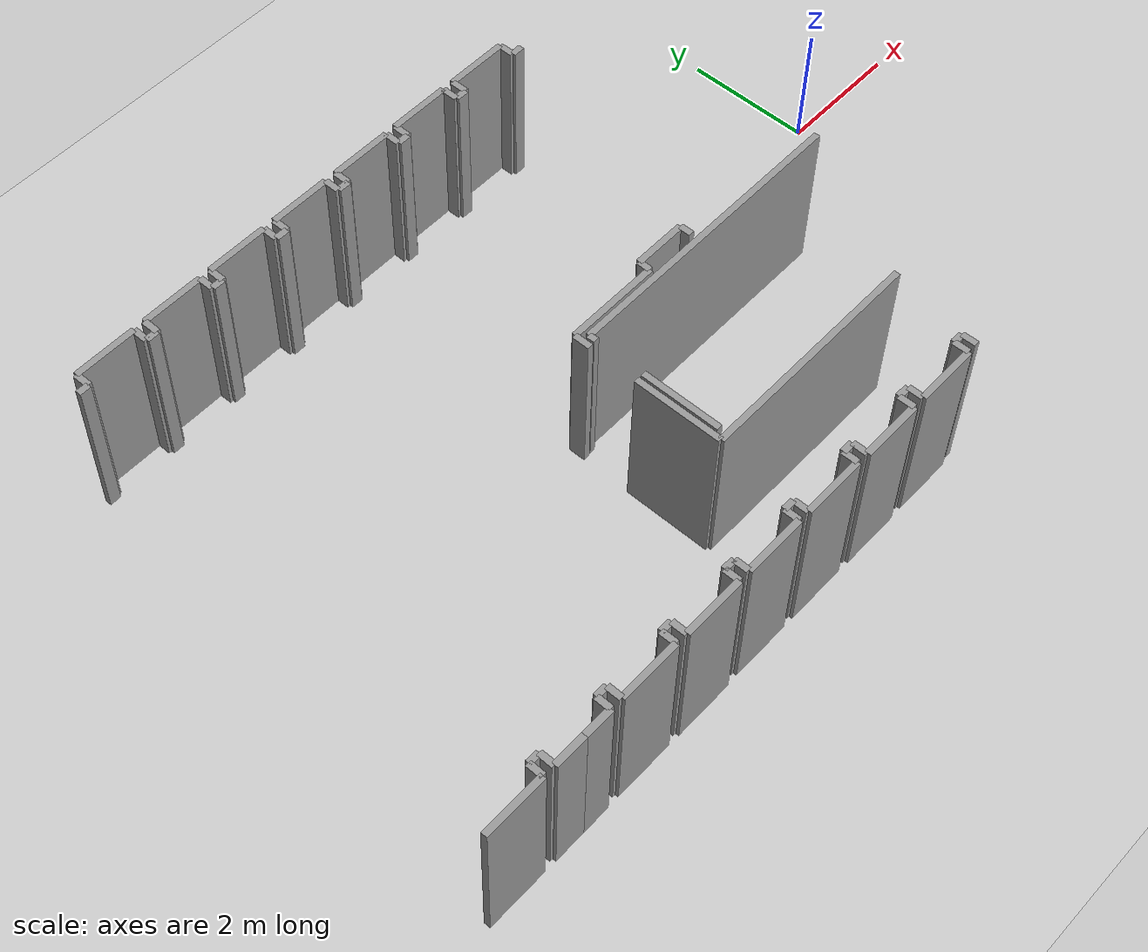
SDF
<sdf version="1.6">
 <world name="default">
  <model name="ground_plane">
   <static>1</static>
   <link name="link">
    <collision name="collision">
     <geometry><plane><normal>0 0 1</normal><size>100 100</size></plane></geometry>
     <surface><friction><ode><mu>100</mu><mu2>50</mu2></ode></friction></surface>
    </collision>
    <visual name="visual">
     <cast_shadows>0</cast_shadows>
     <geometry><plane><normal>0 0 1</normal><size>100 100</size></plane></geometry>
     <material>
      <script><uri>file://media/materials/scripts/gazebo.material</uri><name>Gazebo/Grey</name></script>
     </material>
    </visual>
   </link>
  </model>
  <model name="0510025536_Layout1_PLAN5">
   <static>1</static>
   <link name="Wall_6">
    <collision name="Wall_6_Collision">
     <geometry><box><size>4.75626183426 0.1 2.5</size></box></geometry>
     <pose>2.37813091713 0 1.25 0 0 0</pose>
    </collision>
    <visual name="Wall_6_Visual">
     <pose>2.37813091713 0 1.25 0 0 0</pose>
     <geometry><box><size>4.75626183426 0.1 2.5</size></box></geometry>
     <material>
      <script><uri>file://media/materials/scripts/gazebo.material</uri><name>Gazebo/Grey</name></script>
      <ambient>1 1 1 1</ambient>
     </material>
    </visual>
    <pose>13.7443417926 -4.4078230039 0 0 0 0.0</pose>
   </link>
   <link name="Wall_10">
    <collision name="Wall_10_Collision">
     <geometry><box><size>1.26138948546 0.1 2.5</size></box></geometry>
     <pose>0.630694742728 0 1.25 0 0 0</pose>
    </collision>
    <visual name="Wall_10_Visual">
     <pose>0.630694742728 0 1.25 0 0 0</pose>
     <geometry><box><size>1.26138948546 0.1 2.5</size></box></geometry>
     <material>
      <script><uri>file://media/materials/scripts/gazebo.material</uri><name>Gazebo/Grey</name></script>
      <ambient>1 1 1 1</ambient>
     </material>
    </visual>
    <pose>13.7527290287 -6.58030778615 0 0 0 1.57079632679</pose>
   </link>
   <link name="Wall_11">
    <collision name="Wall_11_Collision">
     <geometry><box><size>0.122347523683 0.1 2.5</size></box></geometry>
     <pose>0.0611737618414 0 1.25 0 0 0</pose>
    </collision>
    <visual name="Wall_11_Visual">
     <pose>0.0611737618414 0 1.25 0 0 0</pose>
     <geometry><box><size>0.122347523683 0.1 2.5</size></box></geometry>
     <material>
      <script><uri>file://media/materials/scripts/gazebo.material</uri><name>Gazebo/Grey</name></script>
      <ambient>1 1 1 1</ambient>
     </material>
    </visual>
    <pose>13.7527290287 -4.52988270577 0 0 0 1.63940269551</pose>
   </link>
   <link name="Wall_12">
    <collision name="Wall_12_Collision">
     <geometry><box><size>0.512638039928 0.1 2.5</size></box></geometry>
     <pose>0.256319019964 0 1.25 0 0 0</pose>
    </collision>
    <visual name="Wall_12_Visual">
     <pose>0.256319019964 0 1.25 0 0 0</pose>
     <geometry><box><size>0.512638039928 0.1 2.5</size></box></geometry>
     <material>
      <script><uri>file://media/materials/scripts/gazebo.material</uri><name>Gazebo/Grey</name></script>
      <ambient>1 1 1 1</ambient>
     </material>
    </visual>
    <pose>9.40146903712 -8.18080847873 0 0 0 3.14159265359</pose>
   </link>
   <link name="Wall_13">
    <collision name="Wall_13_Collision">
     <geometry><box><size>0.235922786596 0.1 2.5</size></box></geometry>
     <pose>0.117961393298 0 1.25 0 0 0</pose>
    </collision>
    <visual name="Wall_13_Visual">
     <pose>0.117961393298 0 1.25 0 0 0</pose>
     <geometry><box><size>0.235922786596 0.1 2.5</size></box></geometry>
     <material>
      <script><uri>file://media/materials/scripts/gazebo.material</uri><name>Gazebo/Grey</name></script>
      <ambient>1 1 1 1</ambient>
     </material>
    </visual>
    <pose>8.88883099719 -8.18080847873 0 0 0 1.57079632679</pose>
   </link>
   <link name="Wall_14">
    <collision name="Wall_14_Collision">
     <geometry><box><size>0.182930703638 0.1 2.5</size></box></geometry>
     <pose>0.0914653518191 0 1.25 0 0 0</pose>
    </collision>
    <visual name="Wall_14_Visual">
     <pose>0.0914653518191 0 1.25 0 0 0</pose>
     <geometry><box><size>0.182930703638 0.1 2.5</size></box></geometry>
     <material>
      <script><uri>file://media/materials/scripts/gazebo.material</uri><name>Gazebo/Grey</name></script>
      <ambient>1 1 1 1</ambient>
     </material>
    </visual>
    <pose>8.88883099719 -7.94488569214 0 0 0 3.14159265359</pose>
   </link>
   <link name="Wall_15">
    <collision name="Wall_15_Collision">
     <geometry><box><size>0.229187581807 0.1 2.5</size></box></geometry>
     <pose>0.114593790904 0 1.25 0 0 0</pose>
    </collision>
    <visual name="Wall_15_Visual">
     <pose>0.114593790904 0 1.25 0 0 0</pose>
     <geometry><box><size>0.229187581807 0.1 2.5</size></box></geometry>
     <material>
      <script><uri>file://media/materials/scripts/gazebo.material</uri><name>Gazebo/Grey</name></script>
      <ambient>1 1 1 1</ambient>
     </material>
    </visual>
    <pose>8.70590029355 -7.94488569214 0 0 0 -1.57079632679</pose>
   </link>
   <link name="Wall_16">
    <collision name="Wall_16_Collision">
     <geometry><box><size>0.9815607884 0.1 2.5</size></box></geometry>
     <pose>0.4907803942 0 1.25 0 0 0</pose>
    </collision>
    <visual name="Wall_16_Visual">
     <pose>0.4907803942 0 1.25 0 0 0</pose>
     <geometry><box><size>0.9815607884 0.1 2.5</size></box></geometry>
     <material>
      <script><uri>file://media/materials/scripts/gazebo.material</uri><name>Gazebo/Grey</name></script>
      <ambient>1 1 1 1</ambient>
     </material>
    </visual>
    <pose>8.70590029355 -8.17407327394 0 0 0 3.14159265359</pose>
   </link>
   <link name="Wall_81">
    <collision name="Wall_81_Collision">
     <geometry><box><size>0.17880062523 0.1 2.5</size></box></geometry>
     <pose>0.0894003126152 0 1.25 0 0 0</pose>
    </collision>
    <visual name="Wall_81_Visual">
     <pose>0.0894003126152 0 1.25 0 0 0</pose>
     <geometry><box><size>0.17880062523 0.1 2.5</size></box></geometry>
     <material>
      <script><uri>file://media/materials/scripts/gazebo.material</uri><name>Gazebo/Grey</name></script>
      <ambient>1 1 1 1</ambient>
     </material>
    </visual>
    <pose>8.70202437382 -0.252843400135 0 0 0 0.0</pose>
   </link>
   <link name="Wall_82">
    <collision name="Wall_82_Collision">
     <geometry><box><size>0.242028948673 0.1 2.5</size></box></geometry>
     <pose>0.121014474336 0 1.25 0 0 0</pose>
    </collision>
    <visual name="Wall_82_Visual">
     <pose>0.121014474336 0 1.25 0 0 0</pose>
     <geometry><box><size>0.242028948673 0.1 2.5</size></box></geometry>
     <material>
      <script><uri>file://media/materials/scripts/gazebo.material</uri><name>Gazebo/Grey</name></script>
      <ambient>1 1 1 1</ambient>
     </material>
    </visual>
    <pose>8.88082499905 -0.252843400135 0 0 0 1.57079632679</pose>
   </link>
   <link name="Wall_83">
    <collision name="Wall_83_Collision">
     <geometry><box><size>0.97895566202 0.1 2.5</size></box></geometry>
     <pose>0.48947783101 0 1.25 0 0 0</pose>
    </collision>
    <visual name="Wall_83_Visual">
     <pose>0.48947783101 0 1.25 0 0 0</pose>
     <geometry><box><size>0.97895566202 0.1 2.5</size></box></geometry>
     <material>
      <script><uri>file://media/materials/scripts/gazebo.material</uri><name>Gazebo/Grey</name></script>
      <ambient>1 1 1 1</ambient>
     </material>
    </visual>
    <pose>8.88082499905 -0.010814451462 0 0 0 0.0</pose>
   </link>
   <link name="Wall_84">
    <collision name="Wall_84_Collision">
     <geometry><box><size>0.241221994891 0.1 2.5</size></box></geometry>
     <pose>0.120610997446 0 1.25 0 0 0</pose>
    </collision>
    <visual name="Wall_84_Visual">
     <pose>0.120610997446 0 1.25 0 0 0</pose>
     <geometry><box><size>0.241221994891 0.1 2.5</size></box></geometry>
     <material>
      <script><uri>file://media/materials/scripts/gazebo.material</uri><name>Gazebo/Grey</name></script>
      <ambient>1 1 1 1</ambient>
     </material>
    </visual>
    <pose>9.85978066107 -0.010814451462 0 0 0 -1.57079632679</pose>
   </link>
   <link name="Wall_85">
    <collision name="Wall_85_Collision">
     <geometry><box><size>0.183693179652 0.1 2.5</size></box></geometry>
     <pose>0.091846589826 0 1.25 0 0 0</pose>
    </collision>
    <visual name="Wall_85_Visual">
     <pose>0.091846589826 0 1.25 0 0 0</pose>
     <geometry><box><size>0.183693179652 0.1 2.5</size></box></geometry>
     <material>
      <script><uri>file://media/materials/scripts/gazebo.material</uri><name>Gazebo/Grey</name></script>
      <ambient>1 1 1 1</ambient>
     </material>
    </visual>
    <pose>9.85978066107 -0.252036446353 0 0 0 0.0</pose>
   </link>
   <link name="Wall_86">
    <collision name="Wall_86_Collision">
     <geometry><box><size>0.245104268595 0.1 2.5</size></box></geometry>
     <pose>0.122552134297 0 1.25 0 0 0</pose>
    </collision>
    <visual name="Wall_86_Visual">
     <pose>0.122552134297 0 1.25 0 0 0</pose>
     <geometry><box><size>0.245104268595 0.1 2.5</size></box></geometry>
     <material>
      <script><uri>file://media/materials/scripts/gazebo.material</uri><name>Gazebo/Grey</name></script>
      <ambient>1 1 1 1</ambient>
     </material>
    </visual>
    <pose>10.0434738407 -0.252036446353 0 0 0 1.57079632679</pose>
   </link>
   <link name="Wall_87">
    <collision name="Wall_87_Collision">
     <geometry><box><size>0.976414075307 0.1 2.5</size></box></geometry>
     <pose>0.488207037654 0 1.25 0 0 0</pose>
    </collision>
    <visual name="Wall_87_Visual">
     <pose>0.488207037654 0 1.25 0 0 0</pose>
     <geometry><box><size>0.976414075307 0.1 2.5</size></box></geometry>
     <material>
      <script><uri>file://media/materials/scripts/gazebo.material</uri><name>Gazebo/Grey</name></script>
      <ambient>1 1 1 1</ambient>
     </material>
    </visual>
    <pose>10.0434738407 -0.00693217775857 0 0 0 0.0</pose>
   </link>
   <link name="Wall_88">
    <collision name="Wall_88_Collision">
     <geometry><box><size>0.237536694158 0.1 2.5</size></box></geometry>
     <pose>0.118768347079 0 1.25 0 0 0</pose>
    </collision>
    <visual name="Wall_88_Visual">
     <pose>0.118768347079 0 1.25 0 0 0</pose>
     <geometry><box><size>0.237536694158 0.1 2.5</size></box></geometry>
     <material>
      <script><uri>file://media/materials/scripts/gazebo.material</uri><name>Gazebo/Grey</name></script>
      <ambient>1 1 1 1</ambient>
     </material>
    </visual>
    <pose>11.019887916 -0.00693217775857 0 0 0 -1.57079632679</pose>
   </link>
   <link name="Wall_89">
    <collision name="Wall_89_Collision">
     <geometry><box><size>0.181659910282 0.1 2.5</size></box></geometry>
     <pose>0.090829955141 0 1.25 0 0 0</pose>
    </collision>
    <visual name="Wall_89_Visual">
     <pose>0.090829955141 0 1.25 0 0 0</pose>
     <geometry><box><size>0.181659910282 0.1 2.5</size></box></geometry>
     <material>
      <script><uri>file://media/materials/scripts/gazebo.material</uri><name>Gazebo/Grey</name></script>
      <ambient>1 1 1 1</ambient>
     </material>
    </visual>
    <pose>11.019887916 -0.244468871917 0 0 0 0.0</pose>
   </link>
   <link name="Wall_90">
    <collision name="Wall_90_Collision">
     <geometry><box><size>0.243102769059 0.1 2.5</size></box></geometry>
     <pose>0.121551384529 0 1.25 0 0 0</pose>
    </collision>
    <visual name="Wall_90_Visual">
     <pose>0.121551384529 0 1.25 0 0 0</pose>
     <geometry><box><size>0.243102769059 0.1 2.5</size></box></geometry>
     <material>
      <script><uri>file://media/materials/scripts/gazebo.material</uri><name>Gazebo/Grey</name></script>
      <ambient>1 1 1 1</ambient>
     </material>
    </visual>
    <pose>11.2015478263 -0.244468871917 0 0 0 1.57079632679</pose>
   </link>
   <link name="Wall_91">
    <collision name="Wall_91_Collision">
     <geometry><box><size>0.972411076235 0.1 2.5</size></box></geometry>
     <pose>0.486205538117 0 1.25 0 0 0</pose>
    </collision>
    <visual name="Wall_91_Visual">
     <pose>0.486205538117 0 1.25 0 0 0</pose>
     <geometry><box><size>0.972411076235 0.1 2.5</size></box></geometry>
     <material>
      <script><uri>file://media/materials/scripts/gazebo.material</uri><name>Gazebo/Grey</name></script>
      <ambient>1 1 1 1</ambient>
     </material>
    </visual>
    <pose>11.2015478263 -0.00136610285801 0 0 0 0.0</pose>
   </link>
   <link name="Wall_92">
    <collision name="Wall_92_Collision">
     <geometry><box><size>0.245834974775 0.1 2.5</size></box></geometry>
     <pose>0.122917487387 0 1.25 0 0 0</pose>
    </collision>
    <visual name="Wall_92_Visual">
     <pose>0.122917487387 0 1.25 0 0 0</pose>
     <geometry><box><size>0.245834974775 0.1 2.5</size></box></geometry>
     <material>
      <script><uri>file://media/materials/scripts/gazebo.material</uri><name>Gazebo/Grey</name></script>
      <ambient>1 1 1 1</ambient>
     </material>
    </visual>
    <pose>12.1739589025 -0.00136610285801 0 0 0 -1.57079632679</pose>
   </link>
   <link name="Wall_93">
    <collision name="Wall_93_Collision">
     <geometry><box><size>0.19392306617 0.1 2.5</size></box></geometry>
     <pose>0.0969615330851 0 1.25 0 0 0</pose>
    </collision>
    <visual name="Wall_93_Visual">
     <pose>0.0969615330851 0 1.25 0 0 0</pose>
     <geometry><box><size>0.19392306617 0.1 2.5</size></box></geometry>
     <material>
      <script><uri>file://media/materials/scripts/gazebo.material</uri><name>Gazebo/Grey</name></script>
      <ambient>1 1 1 1</ambient>
     </material>
    </visual>
    <pose>12.1739589025 -0.247201077633 0 0 0 0.0</pose>
   </link>
   <link name="Wall_94">
    <collision name="Wall_94_Collision">
     <geometry><box><size>0.241736666201 0.1 2.5</size></box></geometry>
     <pose>0.1208683331 0 1.25 0 0 0</pose>
    </collision>
    <visual name="Wall_94_Visual">
     <pose>0.1208683331 0 1.25 0 0 0</pose>
     <geometry><box><size>0.241736666201 0.1 2.5</size></box></geometry>
     <material>
      <script><uri>file://media/materials/scripts/gazebo.material</uri><name>Gazebo/Grey</name></script>
      <ambient>1 1 1 1</ambient>
     </material>
    </visual>
    <pose>12.3678819687 -0.247201077633 0 0 0 1.57079632679</pose>
   </link>
   <link name="Wall_95">
    <collision name="Wall_95_Collision">
     <geometry><box><size>0.962880126063 0.1 2.5</size></box></geometry>
     <pose>0.481440063031 0 1.25 0 0 0</pose>
    </collision>
    <visual name="Wall_95_Visual">
     <pose>0.481440063031 0 1.25 0 0 0</pose>
     <geometry><box><size>0.962880126063 0.1 2.5</size></box></geometry>
     <material>
      <script><uri>file://media/materials/scripts/gazebo.material</uri><name>Gazebo/Grey</name></script>
      <ambient>1 1 1 1</ambient>
     </material>
    </visual>
    <pose>12.3678819687 -0.00546441143206 0 0 0 0.0</pose>
   </link>
   <link name="Wall_96">
    <collision name="Wall_96_Collision">
     <geometry><box><size>0.243102769059 0.1 2.5</size></box></geometry>
     <pose>0.121551384529 0 1.25 0 0 0</pose>
    </collision>
    <visual name="Wall_96_Visual">
     <pose>0.121551384529 0 1.25 0 0 0</pose>
     <geometry><box><size>0.243102769059 0.1 2.5</size></box></geometry>
     <material>
      <script><uri>file://media/materials/scripts/gazebo.material</uri><name>Gazebo/Grey</name></script>
      <ambient>1 1 1 1</ambient>
     </material>
    </visual>
    <pose>13.3307620948 -0.00546441143206 0 0 0 -1.57079632679</pose>
   </link>
   <link name="Wall_97">
    <collision name="Wall_97_Collision">
     <geometry><box><size>0.189792987762 0.1 2.5</size></box></geometry>
     <pose>0.0948964938811 0 1.25 0 0 0</pose>
    </collision>
    <visual name="Wall_97_Visual">
     <pose>0.0948964938811 0 1.25 0 0 0</pose>
     <geometry><box><size>0.189792987762 0.1 2.5</size></box></geometry>
     <material>
      <script><uri>file://media/materials/scripts/gazebo.material</uri><name>Gazebo/Grey</name></script>
      <ambient>1 1 1 1</ambient>
     </material>
    </visual>
    <pose>13.3307620948 -0.248567180491 0 0 0 0.0</pose>
   </link>
   <link name="Wall_98">
    <collision name="Wall_98_Collision">
     <geometry><box><size>0.240370563343 0.1 2.5</size></box></geometry>
     <pose>0.120185281671 0 1.25 0 0 0</pose>
    </collision>
    <visual name="Wall_98_Visual">
     <pose>0.120185281671 0 1.25 0 0 0</pose>
     <geometry><box><size>0.240370563343 0.1 2.5</size></box></geometry>
     <material>
      <script><uri>file://media/materials/scripts/gazebo.material</uri><name>Gazebo/Grey</name></script>
      <ambient>1 1 1 1</ambient>
     </material>
    </visual>
    <pose>13.5205550825 -0.248567180491 0 0 0 1.57079632679</pose>
   </link>
   <link name="Wall_99">
    <collision name="Wall_99_Collision">
     <geometry><box><size>0.978320265342 0.1 2.5</size></box></geometry>
     <pose>0.489160132671 0 1.25 0 0 0</pose>
    </collision>
    <visual name="Wall_99_Visual">
     <pose>0.489160132671 0 1.25 0 0 0</pose>
     <geometry><box><size>0.978320265342 0.1 2.5</size></box></geometry>
     <material>
      <script><uri>file://media/materials/scripts/gazebo.material</uri><name>Gazebo/Grey</name></script>
      <ambient>1 1 1 1</ambient>
     </material>
    </visual>
    <pose>13.5205550825 -0.00819661714809 0 0 0 0.0</pose>
   </link>
   <link name="Wall_100">
    <collision name="Wall_100_Collision">
     <geometry><box><size>0.237638357627 0.1 2.5</size></box></geometry>
     <pose>0.118819178813 0 1.25 0 0 0</pose>
    </collision>
    <visual name="Wall_100_Visual">
     <pose>0.118819178813 0 1.25 0 0 0</pose>
     <geometry><box><size>0.237638357627 0.1 2.5</size></box></geometry>
     <material>
      <script><uri>file://media/materials/scripts/gazebo.material</uri><name>Gazebo/Grey</name></script>
      <ambient>1 1 1 1</ambient>
     </material>
    </visual>
    <pose>14.4988753479 -0.00819661714809 0 0 0 -1.57079632679</pose>
   </link>
   <link name="Wall_101">
    <collision name="Wall_101_Collision">
     <geometry><box><size>0.185281671347 0.1 2.5</size></box></geometry>
     <pose>0.0926408356737 0 1.25 0 0 0</pose>
    </collision>
    <visual name="Wall_101_Visual">
     <pose>0.0926408356737 0 1.25 0 0 0</pose>
     <geometry><box><size>0.185281671347 0.1 2.5</size></box></geometry>
     <material>
      <script><uri>file://media/materials/scripts/gazebo.material</uri><name>Gazebo/Grey</name></script>
      <ambient>1 1 1 1</ambient>
     </material>
    </visual>
    <pose>14.4988753479 -0.245834974775 0 0 0 0.0</pose>
   </link>
   <link name="Wall_102">
    <collision name="Wall_102_Collision">
     <geometry><box><size>0.245834974775 0.1 2.5</size></box></geometry>
     <pose>0.122917487387 0 1.25 0 0 0</pose>
    </collision>
    <visual name="Wall_102_Visual">
     <pose>0.122917487387 0 1.25 0 0 0</pose>
     <geometry><box><size>0.245834974775 0.1 2.5</size></box></geometry>
     <material>
      <script><uri>file://media/materials/scripts/gazebo.material</uri><name>Gazebo/Grey</name></script>
      <ambient>1 1 1 1</ambient>
     </material>
    </visual>
    <pose>14.6841570192 -0.245834974775 0 0 0 1.57079632679</pose>
   </link>
   <link name="Wall_103">
    <collision name="Wall_103_Collision">
     <geometry><box><size>0.965231093772 0.1 2.5</size></box></geometry>
     <pose>0.482615546886 0 1.25 0 0 0</pose>
    </collision>
    <visual name="Wall_103_Visual">
     <pose>0.482615546886 0 1.25 0 0 0</pose>
     <geometry><box><size>0.965231093772 0.1 2.5</size></box></geometry>
     <material>
      <script><uri>file://media/materials/scripts/gazebo.material</uri><name>Gazebo/Grey</name></script>
      <ambient>1 1 1 1</ambient>
     </material>
    </visual>
    <pose>14.6841570192 -0.0 0 0 0 0.0</pose>
   </link>
   <link name="Wall_104">
    <collision name="Wall_104_Collision">
     <geometry><box><size>0.253472442846 0.1 2.5</size></box></geometry>
     <pose>0.126736221423 0 1.25 0 0 0</pose>
    </collision>
    <visual name="Wall_104_Visual">
     <pose>0.126736221423 0 1.25 0 0 0</pose>
     <geometry><box><size>0.253472442846 0.1 2.5</size></box></geometry>
     <material>
      <script><uri>file://media/materials/scripts/gazebo.material</uri><name>Gazebo/Grey</name></script>
      <ambient>1 1 1 1</ambient>
     </material>
    </visual>
    <pose>15.649388113 -0.0 0 0 0 -1.57079632679</pose>
   </link>
   <link name="Wall_105">
    <collision name="Wall_105_Collision">
     <geometry><box><size>0.187314940717 0.1 2.5</size></box></geometry>
     <pose>0.0936574703587 0 1.25 0 0 0</pose>
    </collision>
    <visual name="Wall_105_Visual">
     <pose>0.0936574703587 0 1.25 0 0 0</pose>
     <geometry><box><size>0.187314940717 0.1 2.5</size></box></geometry>
     <material>
      <script><uri>file://media/materials/scripts/gazebo.material</uri><name>Gazebo/Grey</name></script>
      <ambient>1 1 1 1</ambient>
     </material>
    </visual>
    <pose>15.649388113 -0.253472442846 0 0 0 0.0</pose>
   </link>
   <link name="Wall_106">
    <collision name="Wall_106_Collision">
     <geometry><box><size>0.247232847467 0.1 2.5</size></box></geometry>
     <pose>0.123616423733 0 1.25 0 0 0</pose>
    </collision>
    <visual name="Wall_106_Visual">
     <pose>0.123616423733 0 1.25 0 0 0</pose>
     <geometry><box><size>0.247232847467 0.1 2.5</size></box></geometry>
     <material>
      <script><uri>file://media/materials/scripts/gazebo.material</uri><name>Gazebo/Grey</name></script>
      <ambient>1 1 1 1</ambient>
     </material>
    </visual>
    <pose>15.8367030537 -0.253472442846 0 0 0 1.57079632679</pose>
   </link>
   <link name="Wall_107">
    <collision name="Wall_107_Collision">
     <geometry><box><size>0.978383805009 0.1 2.5</size></box></geometry>
     <pose>0.489191902505 0 1.25 0 0 0</pose>
    </collision>
    <visual name="Wall_107_Visual">
     <pose>0.489191902505 0 1.25 0 0 0</pose>
     <geometry><box><size>0.978383805009 0.1 2.5</size></box></geometry>
     <material>
      <script><uri>file://media/materials/scripts/gazebo.material</uri><name>Gazebo/Grey</name></script>
      <ambient>1 1 1 1</ambient>
     </material>
    </visual>
    <pose>15.8367030537 -0.0062395953794 0 0 0 0.0</pose>
   </link>
   <link name="Wall_108">
    <collision name="Wall_108_Collision">
     <geometry><box><size>0.242575389816 0.1 2.5</size></box></geometry>
     <pose>0.121287694908 0 1.25 0 0 0</pose>
    </collision>
    <visual name="Wall_108_Visual">
     <pose>0.121287694908 0 1.25 0 0 0</pose>
     <geometry><box><size>0.242575389816 0.1 2.5</size></box></geometry>
     <material>
      <script><uri>file://media/materials/scripts/gazebo.material</uri><name>Gazebo/Grey</name></script>
      <ambient>1 1 1 1</ambient>
     </material>
    </visual>
    <pose>16.8150868587 -0.0062395953794 0 0 0 -1.57079632679</pose>
   </link>
   <link name="Wall_109">
    <collision name="Wall_109_Collision">
     <geometry><box><size>0.186298306032 0.1 2.5</size></box></geometry>
     <pose>0.0931491530162 0 1.25 0 0 0</pose>
    </collision>
    <visual name="Wall_109_Visual">
     <pose>0.0931491530162 0 1.25 0 0 0</pose>
     <geometry><box><size>0.186298306032 0.1 2.5</size></box></geometry>
     <material>
      <script><uri>file://media/materials/scripts/gazebo.material</uri><name>Gazebo/Grey</name></script>
      <ambient>1 1 1 1</ambient>
     </material>
    </visual>
    <pose>16.8150868587 -0.248814985195 0 0 0 0.0</pose>
   </link>
   <link name="Wall_131">
    <collision name="Wall_131_Collision">
     <geometry><box><size>0.195511557866 0.1 2.5</size></box></geometry>
     <pose>0.0977557789328 0 1.25 0 0 0</pose>
    </collision>
    <visual name="Wall_131_Visual">
     <pose>0.0977557789328 0 1.25 0 0 0</pose>
     <geometry><box><size>0.195511557866 0.1 2.5</size></box></geometry>
     <material>
      <script><uri>file://media/materials/scripts/gazebo.material</uri><name>Gazebo/Grey</name></script>
      <ambient>1 1 1 1</ambient>
     </material>
    </visual>
    <pose>15.9551409945 -4.28055304927 0 0 0 1.57079632679</pose>
   </link>
   <link name="Wall_132">
    <collision name="Wall_132_Collision">
     <geometry><box><size>0.843679709242 0.1 2.5</size></box></geometry>
     <pose>0.421839854621 0 1.25 0 0 0</pose>
    </collision>
    <visual name="Wall_132_Visual">
     <pose>0.421839854621 0 1.25 0 0 0</pose>
     <geometry><box><size>0.843679709242 0.1 2.5</size></box></geometry>
     <material>
      <script><uri>file://media/materials/scripts/gazebo.material</uri><name>Gazebo/Grey</name></script>
      <ambient>1 1 1 1</ambient>
     </material>
    </visual>
    <pose>15.9551409945 -4.0850414914 0 0 0 3.14159265359</pose>
   </link>
   <link name="Wall_133">
    <collision name="Wall_133_Collision">
     <geometry><box><size>0.187314940717 0.1 2.5</size></box></geometry>
     <pose>0.0936574703587 0 1.25 0 0 0</pose>
    </collision>
    <visual name="Wall_133_Visual">
     <pose>0.0936574703587 0 1.25 0 0 0</pose>
     <geometry><box><size>0.187314940717 0.1 2.5</size></box></geometry>
     <material>
      <script><uri>file://media/materials/scripts/gazebo.material</uri><name>Gazebo/Grey</name></script>
      <ambient>1 1 1 1</ambient>
     </material>
    </visual>
    <pose>15.1114612853 -4.0850414914 0 0 0 -1.57079632679</pose>
   </link>
   <link name="Wall_134">
    <collision name="Wall_134_Collision">
     <geometry><box><size>1.49006874992 0.1 2.5</size></box></geometry>
     <pose>0.74503437496 0 1.25 0 0 0</pose>
    </collision>
    <visual name="Wall_134_Visual">
     <pose>0.74503437496 0 1.25 0 0 0</pose>
     <geometry><box><size>1.49006874992 0.1 2.5</size></box></geometry>
     <material>
      <script><uri>file://media/materials/scripts/gazebo.material</uri><name>Gazebo/Grey</name></script>
      <ambient>1 1 1 1</ambient>
     </material>
    </visual>
    <pose>15.1114612853 -4.27235643212 0 0 0 3.14159265359</pose>
   </link>
   <link name="Wall_135">
    <collision name="Wall_135_Collision">
     <geometry><box><size>0.273728888945 0.1 2.5</size></box></geometry>
     <pose>0.136864444473 0 1.25 0 0 0</pose>
    </collision>
    <visual name="Wall_135_Visual">
     <pose>0.136864444473 0 1.25 0 0 0</pose>
     <geometry><box><size>0.273728888945 0.1 2.5</size></box></geometry>
     <material>
      <script><uri>file://media/materials/scripts/gazebo.material</uri><name>Gazebo/Grey</name></script>
      <ambient>1 1 1 1</ambient>
     </material>
    </visual>
    <pose>13.6213925354 -4.27235643212 0 0 0 -1.57079632679</pose>
   </link>
   <link name="Wall_136">
    <collision name="Wall_136_Collision">
     <geometry><box><size>1.38815112275 0.1 2.5</size></box></geometry>
     <pose>0.694075561373 0 1.25 0 0 0</pose>
    </collision>
    <visual name="Wall_136_Visual">
     <pose>0.694075561373 0 1.25 0 0 0</pose>
     <geometry><box><size>1.38815112275 0.1 2.5</size></box></geometry>
     <material>
      <script><uri>file://media/materials/scripts/gazebo.material</uri><name>Gazebo/Grey</name></script>
      <ambient>1 1 1 1</ambient>
     </material>
    </visual>
    <pose>13.6213925354 -5.32209528409 0 0 0 -1.57079632679</pose>
   </link>
   <link name="Wall_137">
    <collision name="Wall_137_Collision">
     <geometry><box><size>3.64025110877 0.1 2.5</size></box></geometry>
     <pose>1.82012555438 0 1.25 0 0 0</pose>
    </collision>
    <visual name="Wall_137_Visual">
     <pose>1.82012555438 0 1.25 0 0 0</pose>
     <geometry><box><size>3.64025110877 0.1 2.5</size></box></geometry>
     <material>
      <script><uri>file://media/materials/scripts/gazebo.material</uri><name>Gazebo/Grey</name></script>
      <ambient>1 1 1 1</ambient>
     </material>
    </visual>
    <pose>13.6213925354 -6.71024640683 0 0 0 0.0</pose>
   </link>
   <link name="Wall_152">
    <collision name="Wall_152_Collision">
     <geometry><box><size>0.238972690651 0.1 2.5</size></box></geometry>
     <pose>0.119486345325 0 1.25 0 0 0</pose>
    </collision>
    <visual name="Wall_152_Visual">
     <pose>0.119486345325 0 1.25 0 0 0</pose>
     <geometry><box><size>0.238972690651 0.1 2.5</size></box></geometry>
     <material>
      <script><uri>file://media/materials/scripts/gazebo.material</uri><name>Gazebo/Grey</name></script>
      <ambient>1 1 1 1</ambient>
     </material>
    </visual>
    <pose>16.9960478327 -8.18080847873 0 0 0 1.57079632679</pose>
   </link>
   <link name="Wall_153">
    <collision name="Wall_153_Collision">
     <geometry><box><size>0.171557103099 0.1 2.5</size></box></geometry>
     <pose>0.0857785515497 0 1.25 0 0 0</pose>
    </collision>
    <visual name="Wall_153_Visual">
     <pose>0.0857785515497 0 1.25 0 0 0</pose>
     <geometry><box><size>0.171557103099 0.1 2.5</size></box></geometry>
     <material>
      <script><uri>file://media/materials/scripts/gazebo.material</uri><name>Gazebo/Grey</name></script>
      <ambient>1 1 1 1</ambient>
     </material>
    </visual>
    <pose>16.9960478327 -7.94183578808 0 0 0 3.14159265359</pose>
   </link>
   <link name="Wall_154">
    <collision name="Wall_154_Collision">
     <geometry><box><size>0.234779072575 0.1 2.5</size></box></geometry>
     <pose>0.117389536288 0 1.25 0 0 0</pose>
    </collision>
    <visual name="Wall_154_Visual">
     <pose>0.117389536288 0 1.25 0 0 0</pose>
     <geometry><box><size>0.234779072575 0.1 2.5</size></box></geometry>
     <material>
      <script><uri>file://media/materials/scripts/gazebo.material</uri><name>Gazebo/Grey</name></script>
      <ambient>1 1 1 1</ambient>
     </material>
    </visual>
    <pose>16.8244907296 -7.94183578808 0 0 0 -1.57079632679</pose>
   </link>
   <link name="Wall_155">
    <collision name="Wall_155_Collision">
     <geometry><box><size>0.97895566202 0.1 2.5</size></box></geometry>
     <pose>0.48947783101 0 1.25 0 0 0</pose>
    </collision>
    <visual name="Wall_155_Visual">
     <pose>0.48947783101 0 1.25 0 0 0</pose>
     <geometry><box><size>0.97895566202 0.1 2.5</size></box></geometry>
     <material>
      <script><uri>file://media/materials/scripts/gazebo.material</uri><name>Gazebo/Grey</name></script>
      <ambient>1 1 1 1</ambient>
     </material>
    </visual>
    <pose>16.8244907296 -8.17661486066 0 0 0 3.14159265359</pose>
   </link>
   <link name="Wall_156">
    <collision name="Wall_156_Collision">
     <geometry><box><size>0.236621722942 0.1 2.5</size></box></geometry>
     <pose>0.118310861471 0 1.25 0 0 0</pose>
    </collision>
    <visual name="Wall_156_Visual">
     <pose>0.118310861471 0 1.25 0 0 0</pose>
     <geometry><box><size>0.236621722942 0.1 2.5</size></box></geometry>
     <material>
      <script><uri>file://media/materials/scripts/gazebo.material</uri><name>Gazebo/Grey</name></script>
      <ambient>1 1 1 1</ambient>
     </material>
    </visual>
    <pose>15.8455350675 -8.17661486066 0 0 0 1.57079632679</pose>
   </link>
   <link name="Wall_157">
    <collision name="Wall_157_Collision">
     <geometry><box><size>0.195066780191 0.1 2.5</size></box></geometry>
     <pose>0.0975333900954 0 1.25 0 0 0</pose>
    </collision>
    <visual name="Wall_157_Visual">
     <pose>0.0975333900954 0 1.25 0 0 0</pose>
     <geometry><box><size>0.195066780191 0.1 2.5</size></box></geometry>
     <material>
      <script><uri>file://media/materials/scripts/gazebo.material</uri><name>Gazebo/Grey</name></script>
      <ambient>1 1 1 1</ambient>
     </material>
    </visual>
    <pose>15.8455350675 -7.93999313772 0 0 0 3.14159265359</pose>
   </link>
   <link name="Wall_158">
    <collision name="Wall_158_Collision">
     <geometry><box><size>0.243865245072 0.1 2.5</size></box></geometry>
     <pose>0.121932622536 0 1.25 0 0 0</pose>
    </collision>
    <visual name="Wall_158_Visual">
     <pose>0.121932622536 0 1.25 0 0 0</pose>
     <geometry><box><size>0.243865245072 0.1 2.5</size></box></geometry>
     <material>
      <script><uri>file://media/materials/scripts/gazebo.material</uri><name>Gazebo/Grey</name></script>
      <ambient>1 1 1 1</ambient>
     </material>
    </visual>
    <pose>15.6504682874 -7.93999313772 0 0 0 -1.57079632679</pose>
   </link>
   <link name="Wall_159">
    <collision name="Wall_159_Collision">
     <geometry><box><size>0.966311268125 0.1 2.5</size></box></geometry>
     <pose>0.483155634062 0 1.25 0 0 0</pose>
    </collision>
    <visual name="Wall_159_Visual">
     <pose>0.483155634062 0 1.25 0 0 0</pose>
     <geometry><box><size>0.966311268125 0.1 2.5</size></box></geometry>
     <material>
      <script><uri>file://media/materials/scripts/gazebo.material</uri><name>Gazebo/Grey</name></script>
      <ambient>1 1 1 1</ambient>
     </material>
    </visual>
    <pose>15.6504682874 -8.18385838279 0 0 0 3.14159265359</pose>
   </link>
   <link name="Wall_160">
    <collision name="Wall_160_Collision">
     <geometry><box><size>0.239353928658 0.1 2.5</size></box></geometry>
     <pose>0.119676964329 0 1.25 0 0 0</pose>
    </collision>
    <visual name="Wall_160_Visual">
     <pose>0.119676964329 0 1.25 0 0 0</pose>
     <geometry><box><size>0.239353928658 0.1 2.5</size></box></geometry>
     <material>
      <script><uri>file://media/materials/scripts/gazebo.material</uri><name>Gazebo/Grey</name></script>
      <ambient>1 1 1 1</ambient>
     </material>
    </visual>
    <pose>14.6841570192 -8.18385838279 0 0 0 1.57079632679</pose>
   </link>
   <link name="Wall_161">
    <collision name="Wall_161_Collision">
     <geometry><box><size>0.18432857633 0.1 2.5</size></box></geometry>
     <pose>0.0921642881651 0 1.25 0 0 0</pose>
    </collision>
    <visual name="Wall_161_Visual">
     <pose>0.0921642881651 0 1.25 0 0 0</pose>
     <geometry><box><size>0.18432857633 0.1 2.5</size></box></geometry>
     <material>
      <script><uri>file://media/materials/scripts/gazebo.material</uri><name>Gazebo/Grey</name></script>
      <ambient>1 1 1 1</ambient>
     </material>
    </visual>
    <pose>14.6841570192 -7.94450445413 0 0 0 3.14159265359</pose>
   </link>
   <link name="Wall_162">
    <collision name="Wall_162_Collision">
     <geometry><box><size>0.229441740479 0.1 2.5</size></box></geometry>
     <pose>0.114720870239 0 1.25 0 0 0</pose>
    </collision>
    <visual name="Wall_162_Visual">
     <pose>0.114720870239 0 1.25 0 0 0</pose>
     <geometry><box><size>0.229441740479 0.1 2.5</size></box></geometry>
     <material>
      <script><uri>file://media/materials/scripts/gazebo.material</uri><name>Gazebo/Grey</name></script>
      <ambient>1 1 1 1</ambient>
     </material>
    </visual>
    <pose>14.4998284429 -7.94450445413 0 0 0 -1.57079632679</pose>
   </link>
   <link name="Wall_163">
    <collision name="Wall_163_Collision">
     <geometry><box><size>0.983721137106 0.1 2.5</size></box></geometry>
     <pose>0.491860568553 0 1.25 0 0 0</pose>
    </collision>
    <visual name="Wall_163_Visual">
     <pose>0.491860568553 0 1.25 0 0 0</pose>
     <geometry><box><size>0.983721137106 0.1 2.5</size></box></geometry>
     <material>
      <script><uri>file://media/materials/scripts/gazebo.material</uri><name>Gazebo/Grey</name></script>
      <ambient>1 1 1 1</ambient>
     </material>
    </visual>
    <pose>14.4998284429 -8.17394619461 0 0 0 3.14159265359</pose>
   </link>
   <link name="Wall_164">
    <collision name="Wall_164_Collision">
     <geometry><box><size>0.23579570726 0.1 2.5</size></box></geometry>
     <pose>0.11789785363 0 1.25 0 0 0</pose>
    </collision>
    <visual name="Wall_164_Visual">
     <pose>0.11789785363 0 1.25 0 0 0</pose>
     <geometry><box><size>0.23579570726 0.1 2.5</size></box></geometry>
     <material>
      <script><uri>file://media/materials/scripts/gazebo.material</uri><name>Gazebo/Grey</name></script>
      <ambient>1 1 1 1</ambient>
     </material>
    </visual>
    <pose>13.5161073058 -8.17394619461 0 0 0 1.57079632679</pose>
   </link>
   <link name="Wall_165">
    <collision name="Wall_165_Collision">
     <geometry><box><size>0.176576736857 0.1 2.5</size></box></geometry>
     <pose>0.0882883684284 0 1.25 0 0 0</pose>
    </collision>
    <visual name="Wall_165_Visual">
     <pose>0.0882883684284 0 1.25 0 0 0</pose>
     <geometry><box><size>0.176576736857 0.1 2.5</size></box></geometry>
     <material>
      <script><uri>file://media/materials/scripts/gazebo.material</uri><name>Gazebo/Grey</name></script>
      <ambient>1 1 1 1</ambient>
     </material>
    </visual>
    <pose>13.5161073058 -7.93815048735 0 0 0 3.14159265359</pose>
   </link>
   <link name="Wall_166">
    <collision name="Wall_166_Collision">
     <geometry><box><size>0.233381199883 0.1 2.5</size></box></geometry>
     <pose>0.116690599942 0 1.25 0 0 0</pose>
    </collision>
    <visual name="Wall_166_Visual">
     <pose>0.116690599942 0 1.25 0 0 0</pose>
     <geometry><box><size>0.233381199883 0.1 2.5</size></box></geometry>
     <material>
      <script><uri>file://media/materials/scripts/gazebo.material</uri><name>Gazebo/Grey</name></script>
      <ambient>1 1 1 1</ambient>
     </material>
    </visual>
    <pose>13.3395305689 -7.93815048735 0 0 0 -1.57079632679</pose>
   </link>
   <link name="Wall_167">
    <collision name="Wall_167_Collision">
     <geometry><box><size>0.970631965536 0.1 2.5</size></box></geometry>
     <pose>0.485315982768 0 1.25 0 0 0</pose>
    </collision>
    <visual name="Wall_167_Visual">
     <pose>0.485315982768 0 1.25 0 0 0</pose>
     <geometry><box><size>0.970631965536 0.1 2.5</size></box></geometry>
     <material>
      <script><uri>file://media/materials/scripts/gazebo.material</uri><name>Gazebo/Grey</name></script>
      <ambient>1 1 1 1</ambient>
     </material>
    </visual>
    <pose>13.3395305689 -8.17153168723 0 0 0 3.14159265359</pose>
   </link>
   <link name="Wall_168">
    <collision name="Wall_168_Collision">
     <geometry><box><size>0.226645995095 0.1 2.5</size></box></geometry>
     <pose>0.113322997547 0 1.25 0 0 0</pose>
    </collision>
    <visual name="Wall_168_Visual">
     <pose>0.113322997547 0 1.25 0 0 0</pose>
     <geometry><box><size>0.226645995095 0.1 2.5</size></box></geometry>
     <material>
      <script><uri>file://media/materials/scripts/gazebo.material</uri><name>Gazebo/Grey</name></script>
      <ambient>1 1 1 1</ambient>
     </material>
    </visual>
    <pose>12.3688986034 -8.17153168723 0 0 0 1.57079632679</pose>
   </link>
   <link name="Wall_169">
    <collision name="Wall_169_Collision">
     <geometry><box><size>0.185662909354 0.1 2.5</size></box></geometry>
     <pose>0.0928314546772 0 1.25 0 0 0</pose>
    </collision>
    <visual name="Wall_169_Visual">
     <pose>0.0928314546772 0 1.25 0 0 0</pose>
     <geometry><box><size>0.185662909354 0.1 2.5</size></box></geometry>
     <material>
      <script><uri>file://media/materials/scripts/gazebo.material</uri><name>Gazebo/Grey</name></script>
      <ambient>1 1 1 1</ambient>
     </material>
    </visual>
    <pose>12.3688986034 -7.94488569214 0 0 0 3.14159265359</pose>
   </link>
   <link name="Wall_170">
    <collision name="Wall_170_Collision">
     <geometry><box><size>0.238654992312 0.1 2.5</size></box></geometry>
     <pose>0.119327496156 0 1.25 0 0 0</pose>
    </collision>
    <visual name="Wall_170_Visual">
     <pose>0.119327496156 0 1.25 0 0 0</pose>
     <geometry><box><size>0.238654992312 0.1 2.5</size></box></geometry>
     <material>
      <script><uri>file://media/materials/scripts/gazebo.material</uri><name>Gazebo/Grey</name></script>
      <ambient>1 1 1 1</ambient>
     </material>
    </visual>
    <pose>12.183235694 -7.94488569214 0 0 0 -1.57079632679</pose>
   </link>
   <link name="Wall_171">
    <collision name="Wall_171_Collision">
     <geometry><box><size>0.977621328996 0.1 2.5</size></box></geometry>
     <pose>0.488810664498 0 1.25 0 0 0</pose>
    </collision>
    <visual name="Wall_171_Visual">
     <pose>0.488810664498 0 1.25 0 0 0</pose>
     <geometry><box><size>0.977621328996 0.1 2.5</size></box></geometry>
     <material>
      <script><uri>file://media/materials/scripts/gazebo.material</uri><name>Gazebo/Grey</name></script>
      <ambient>1 1 1 1</ambient>
     </material>
    </visual>
    <pose>12.183235694 -8.18354068445 0 0 0 3.14159265359</pose>
   </link>
   <link name="Wall_172">
    <collision name="Wall_172_Collision">
     <geometry><box><size>0.243547546733 0.1 2.5</size></box></geometry>
     <pose>0.121773773367 0 1.25 0 0 0</pose>
    </collision>
    <visual name="Wall_172_Visual">
     <pose>0.121773773367 0 1.25 0 0 0</pose>
     <geometry><box><size>0.243547546733 0.1 2.5</size></box></geometry>
     <material>
      <script><uri>file://media/materials/scripts/gazebo.material</uri><name>Gazebo/Grey</name></script>
      <ambient>1 1 1 1</ambient>
     </material>
    </visual>
    <pose>11.205614365 -8.18354068445 0 0 0 1.57079632679</pose>
   </link>
   <link name="Wall_173">
    <collision name="Wall_173_Collision">
     <geometry><box><size>0.184455655666 0.1 2.5</size></box></geometry>
     <pose>0.0922278278329 0 1.25 0 0 0</pose>
    </collision>
    <visual name="Wall_173_Visual">
     <pose>0.0922278278329 0 1.25 0 0 0</pose>
     <geometry><box><size>0.184455655666 0.1 2.5</size></box></geometry>
     <material>
      <script><uri>file://media/materials/scripts/gazebo.material</uri><name>Gazebo/Grey</name></script>
      <ambient>1 1 1 1</ambient>
     </material>
    </visual>
    <pose>11.205614365 -7.93999313772 0 0 0 3.14159265359</pose>
   </link>
   <link name="Wall_174">
    <collision name="Wall_174_Collision">
     <geometry><box><size>0.236621722942 0.1 2.5</size></box></geometry>
     <pose>0.118310861471 0 1.25 0 0 0</pose>
    </collision>
    <visual name="Wall_174_Visual">
     <pose>0.118310861471 0 1.25 0 0 0</pose>
     <geometry><box><size>0.236621722942 0.1 2.5</size></box></geometry>
     <material>
      <script><uri>file://media/materials/scripts/gazebo.material</uri><name>Gazebo/Grey</name></script>
      <ambient>1 1 1 1</ambient>
     </material>
    </visual>
    <pose>11.0211587094 -7.93999313772 0 0 0 -1.57079632679</pose>
   </link>
   <link name="Wall_175">
    <collision name="Wall_175_Collision">
     <geometry><box><size>0.973554790256 0.1 2.5</size></box></geometry>
     <pose>0.486777395128 0 1.25 0 0 0</pose>
    </collision>
    <visual name="Wall_175_Visual">
     <pose>0.486777395128 0 1.25 0 0 0</pose>
     <geometry><box><size>0.973554790256 0.1 2.5</size></box></geometry>
     <material>
      <script><uri>file://media/materials/scripts/gazebo.material</uri><name>Gazebo/Grey</name></script>
      <ambient>1 1 1 1</ambient>
     </material>
    </visual>
    <pose>11.0211587094 -8.17661486066 0 0 0 3.14159265359</pose>
   </link>
   <link name="Wall_176">
    <collision name="Wall_176_Collision">
     <geometry><box><size>0.228869883468 0.1 2.5</size></box></geometry>
     <pose>0.114434941734 0 1.25 0 0 0</pose>
    </collision>
    <visual name="Wall_176_Visual">
     <pose>0.114434941734 0 1.25 0 0 0</pose>
     <geometry><box><size>0.228869883468 0.1 2.5</size></box></geometry>
     <material>
      <script><uri>file://media/materials/scripts/gazebo.material</uri><name>Gazebo/Grey</name></script>
      <ambient>1 1 1 1</ambient>
     </material>
    </visual>
    <pose>10.0476039191 -8.17661486066 0 0 0 1.57079632679</pose>
   </link>
   <link name="Wall_177">
    <collision name="Wall_177_Collision">
     <geometry><box><size>0.188966972081 0.1 2.5</size></box></geometry>
     <pose>0.0944834860403 0 1.25 0 0 0</pose>
    </collision>
    <visual name="Wall_177_Visual">
     <pose>0.0944834860403 0 1.25 0 0 0</pose>
     <geometry><box><size>0.188966972081 0.1 2.5</size></box></geometry>
     <material>
      <script><uri>file://media/materials/scripts/gazebo.material</uri><name>Gazebo/Grey</name></script>
      <ambient>1 1 1 1</ambient>
     </material>
    </visual>
    <pose>10.0476039191 -7.94774497719 0 0 0 3.14159265359</pose>
   </link>
   <link name="Wall_178">
    <collision name="Wall_178_Collision">
     <geometry><box><size>0.230585454499 0.1 2.5</size></box></geometry>
     <pose>0.11529272725 0 1.25 0 0 0</pose>
    </collision>
    <visual name="Wall_178_Visual">
     <pose>0.11529272725 0 1.25 0 0 0</pose>
     <geometry><box><size>0.230585454499 0.1 2.5</size></box></geometry>
     <material>
      <script><uri>file://media/materials/scripts/gazebo.material</uri><name>Gazebo/Grey</name></script>
      <ambient>1 1 1 1</ambient>
     </material>
    </visual>
    <pose>9.85863694705 -7.94774497719 0 0 0 -1.57079632679</pose>
   </link>
   <link name="Wall_179">
    <collision name="Wall_179_Collision">
     <geometry><box><size>0.457174625918 0.1 2.5</size></box></geometry>
     <pose>0.228587312959 0 1.25 0 0 0</pose>
    </collision>
    <visual name="Wall_179_Visual">
     <pose>0.228587312959 0 1.25 0 0 0</pose>
     <geometry><box><size>0.457174625918 0.1 2.5</size></box></geometry>
     <material>
      <script><uri>file://media/materials/scripts/gazebo.material</uri><name>Gazebo/Grey</name></script>
      <ambient>1 1 1 1</ambient>
     </material>
    </visual>
    <pose>9.85863694705 -8.17833043169 0 0 0 -3.13617227582</pose>
   </link>
   <pose>-20.35 2.93385838279 0 0 0 0</pose>
  </model>
 </world>
</sdf>
